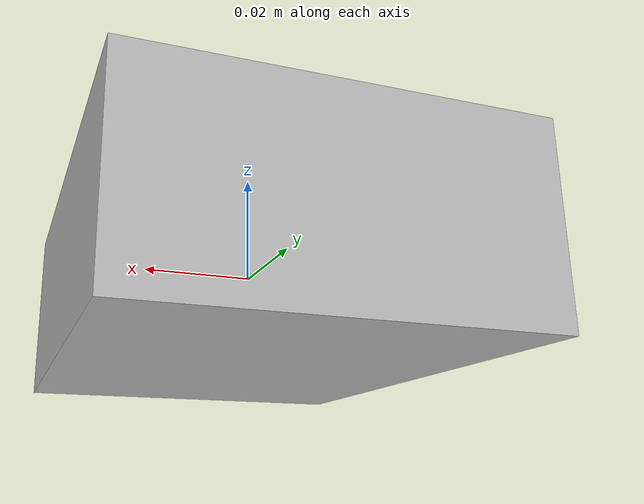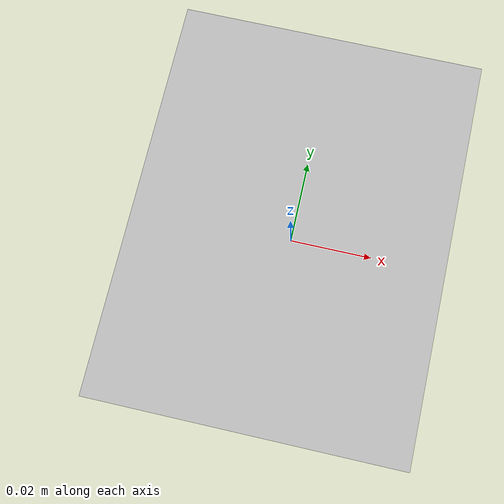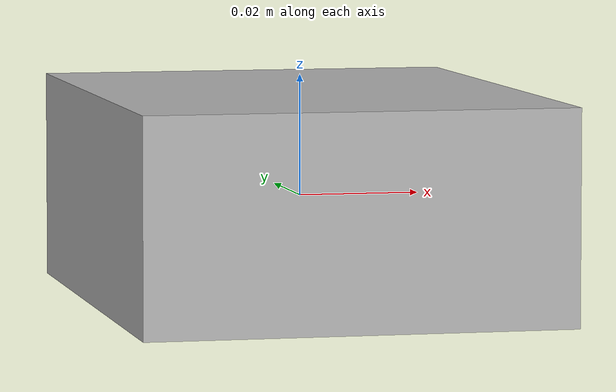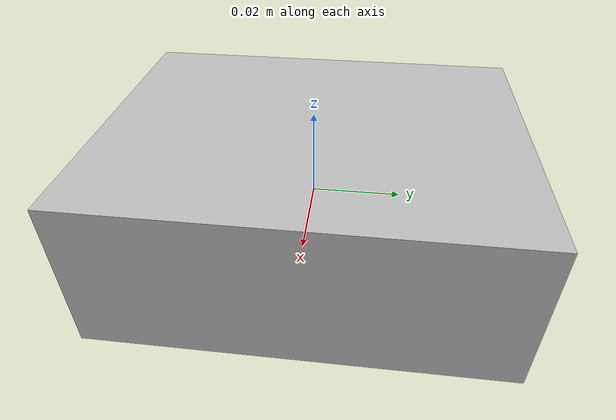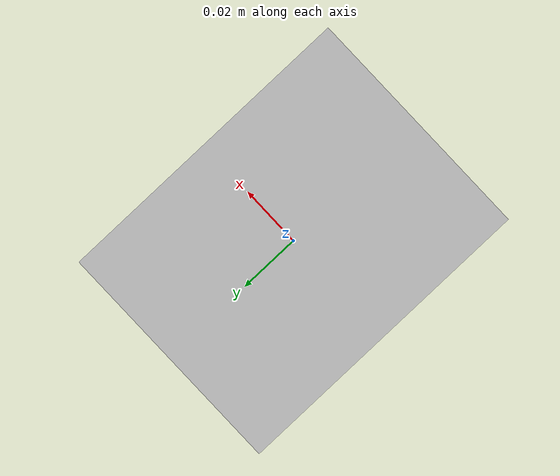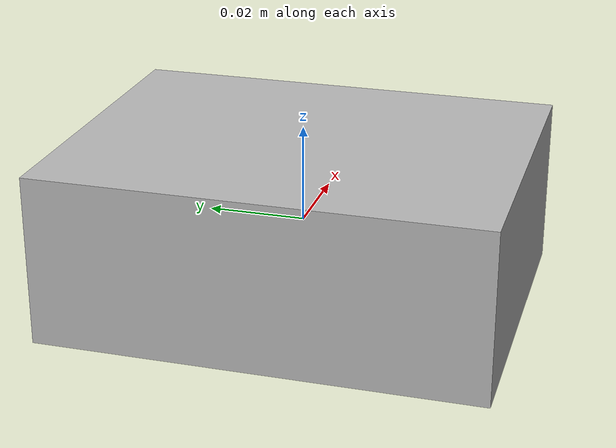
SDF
<?xml version="1.0" ?>
<sdf version="1.5">
  <model name="rm_webcam_right">
    <pose>0 0 0 0 0 0</pose>
    <link name="webcam_right_link">
      <inertial>
        <mass>0.1</mass>
      </inertial>
      <collision name="collision">
        <geometry>
          <box>
            <size>0.07 0.091 0.035</size>
          </box>
        </geometry>
      </collision>
      <visual name="visual">
        <geometry>
          <box>
            <size>0.07 0.091 0.035</size>
          </box>
        </geometry>
      </visual>
      <sensor name="webcam_right" type="camera">
        <update_rate>30</update_rate>
        <camera>
          <horizontal_fov>1.570796</horizontal_fov>
          <image>
            <width>640</width>
            <height>480</height>
            <format>R8G8B8</format>
          </image>
          <clip>
            <near>0.01</near>
            <far>1000</far>
          </clip>
        </camera>
        <plugin name="camera_controller" filename="libgazebo_ros_camera.so">
          <alwaysOn>true</alwaysOn>
          <updateRate>0.0</updateRate>
          <cameraName>cameras/webcam_right</cameraName>
          <imageTopicName>image_raw</imageTopicName>
          <cameraInfoTopicName>camera_info</cameraInfoTopicName>
          <frameName>webcam_right_link</frameName>
          <hackBaseline>0.07</hackBaseline>
          <distortionK1>0.0</distortionK1>
          <distortionK2>0.0</distortionK2>
          <distortionK3>0.0</distortionK3>
          <distortionT1>0.0</distortionT1>
          <distortionT2>0.0</distortionT2>
        </plugin>
      </sensor>
    </link>
  </model>
</sdf>
